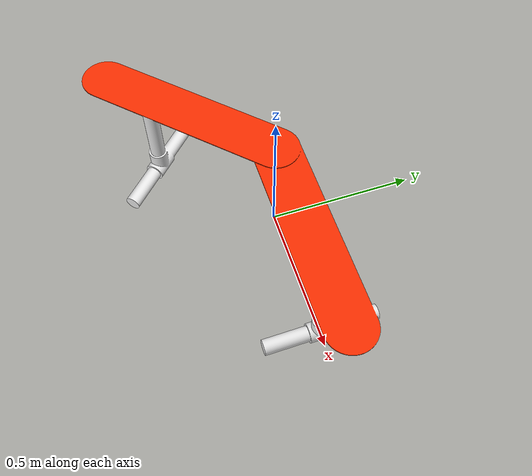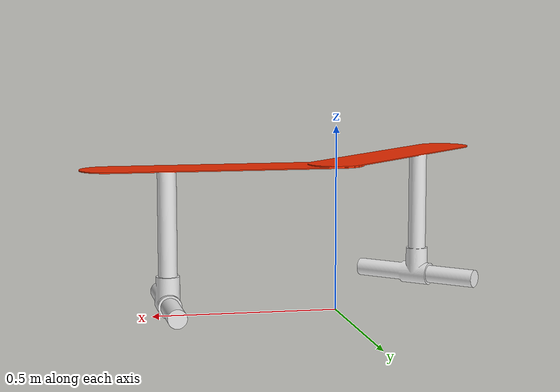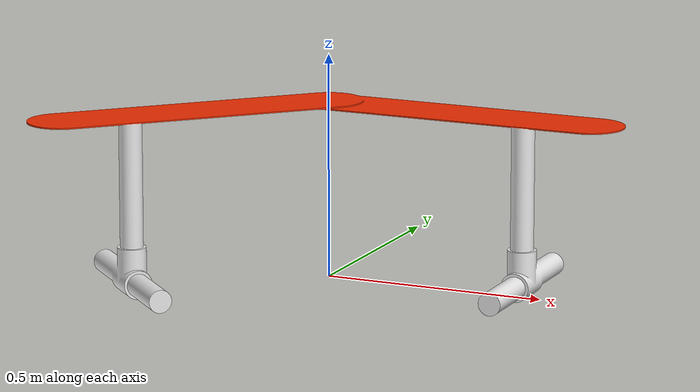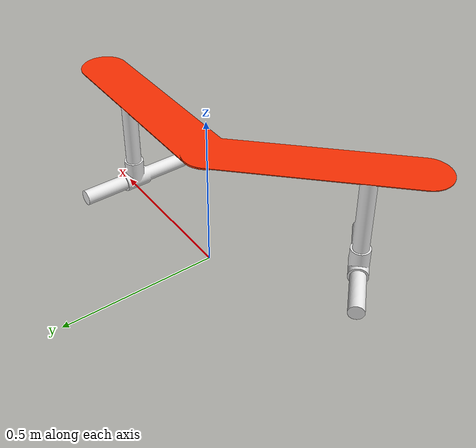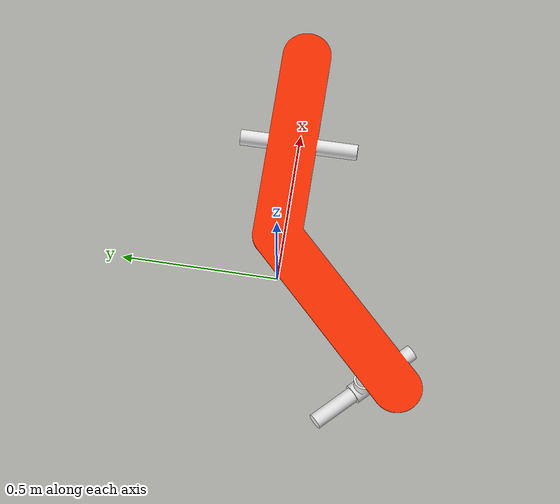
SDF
<?xml version="1.0" ?>
<sdf version="1.9">
    <model name="path_marker_45ccw">
        <static>true</static>
        <link name="path_marker_45ccw">
            <visual name="lane_marker_45left_visual">
                <geometry>
                    <mesh>
                        <uri>lane_marker_45left.dae</uri>
                    </mesh>
                </geometry>
            </visual>
            <collision name="lane_marker_45left_collision">
                <geometry>
                    <mesh>
                        <uri>lane_marker_45left.dae</uri>
                    </mesh>
                </geometry>
            </collision>
        </link>
    </model>
</sdf>
